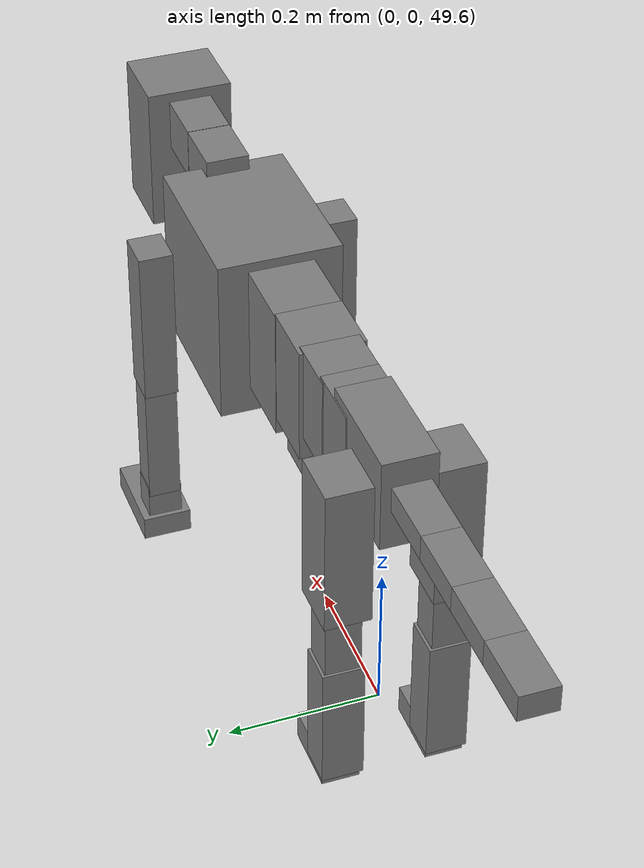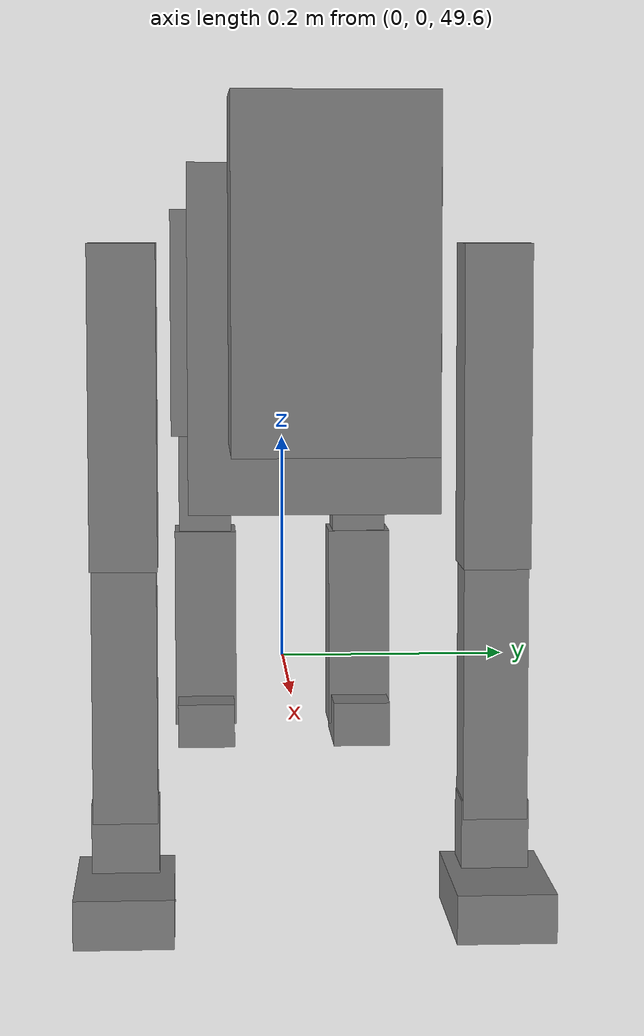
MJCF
<mujoco model="dog">

    <default>
        <joint armature="0.02" stiffness="1" damping="0.2" limited="true"/>
        <geom condim="3" friction="1 0.05 0.05" margin="0.01"/>
        <motor ctrllimited="true" ctrlrange="-1.0 1.0" forcelimited="true" gear="50"/>
    </default>

    <compiler inertiafromgeom="true" angle="radian"/>

    <option timestep="0.016" iterations="50" tolerance="1e-10" solver="Newton" jacobian="dense" cone="pyramidal"/>

    <size nconmax="20000" njmax="60000" nstack="5000000"/>
    <visual>
        <map force="0.1" zfar="30"/>
        <rgba haze="0.15 0.25 0.35 1"/>
        <quality shadowsize="2048"/>
        <global offwidth="800" offheight="800"/>
    </visual>

    <asset>
        <texture type="skybox" builtin="gradient" rgb1="0.3 0.5 0.7" rgb2="0 0 0" width="512" height="512"/>
        <texture name="texplane" type="2d" builtin="checker" rgb1=".2 .3 .4" rgb2=".1 0.15 0.2" width="512" height="512"
                 mark="cross" markrgb=".8 .8 .8"/>
        <texture name="texgeom" type="cube" builtin="flat" mark="cross" width="127" height="1278" rgb1="0.8 0.6 0.4"
                 rgb2="0.8 0.6 0.4" markrgb="1 1 1" random="0.01"/>

        <material name="matplane" reflectance="0.3" texture="texplane" texrepeat="1 1" texuniform="true"/>
        <material name="matgeom" texture="texgeom" texuniform="true" rgba="0.8 0.6 .4 1"/>
    </asset>

    <worldbody>
        <geom name="floor" pos="0 0 0" size="0 0 .25" type="plane" material="matplane" condim="3"/>

        <light directional="false" diffuse=".2 .2 .2" specular="0 0 0" pos="0 0 5" dir="0 0 -1" castshadow="false"/>
        <light mode="targetbodycom" target="torso" directional="false" diffuse=".8 .8 .8" specular="0.3 0.3 0.3"
               pos="0 0 4.0" dir="0 0 -1"/>

        <body name="root" pos="0 0 50">
            <freejoint name="root_1"/>
            <geom type="box" pos="0 0 -0.02" size="0.0774  0.0358  0.063" density="2030"/>

            <body name="spine1" pos="0.054 0 0">
                <joint name="spine1_y" axis="0 1 0" range="0 0.7" limited="true"/>
                <geom type="box" pos="0.02375 0 -0.03" size="0.04375  0.0375  0.05985" density="2030"/>

                <body name="spine2" pos="0.0612 0 0">
                    <joint name="spine2_y" axis="0 1 0" range="-0.15 0.15" limited="true"/>
                    <geom type="box" pos="0.03555  0  -0.04" size="0.04055  0.039  0.06615" density="2030"/>

                    <body name="spine3" pos="0.0730 0 0">
                        <joint name="spine3_y" axis="0 1 0" range="-0.15 0.15" limited="true"/>
                        <geom type="box" pos="0.03555  0  -0.057" size="0.04555  0.0445  0.081" density="2030"/>

                        <body name="spine4" pos="0.0780 0 0">
                            <joint name="spine4_y" axis="0 1 0" range="-0.15 0.15" limited="true"/>
                            <geom type="box" pos="0.05265  0  -0.07" size="0.05265  0.045  0.09135" density="2030"/>

                            <body name="torso" pos="0.1082 0 0">
                                <joint name="torso_y" axis="0 1 0" range="-0.15 0.15" limited="true"/>
                                <geom type="box" pos="0.11925  0  -0.085" size="0.11925  0.085  0.11745"
                                      density="2030"/>

                                <body name="neck1" pos="0.2160  0   0.0180">
                                    <joint name="neck1_y" axis="0 1 0" range="-1.2  -1" limited="true"/>
                                    <geom type="box" pos="0.0423  0  0" size="0.0423  0.03  0.036" density="2325"/>

                                    <body name="neck2" pos="0.0853  0  0">
                                        <joint name="neck2_y" axis="0 1 0" range="0.1  0" limited="true"/>
                                        <geom type="box" pos="0.0423  0  0" size="0.0423  0.03  0.036" density="2325"/>

                                        <body name="head" pos="0.0853  0  0">
                                            <joint name="head_y" axis="0 1 0" range="-0.3  -0.2" limited="true"/>
                                            <geom type="box" pos="0.0531  0  -0.055" size="0.0531  0.06  0.1044"
                                                  density="4030"/>

                                        </body>
                                    </body>
                                </body>

                                <body name="front_shoulder" pos="0.156  0   -0.0480">
                                    <joint name="front_shoulder_y" axis="0 1 0" range="-1 1.5" limited="true"/>
                                    <geom type="box" pos="0 0.13 -0.0866" size="0.0276  0.0236  0.1133" density="1158"/>
                                    <geom type="box" pos="0 -0.13 -0.0866" size="0.0276  0.0236  0.1133"
                                          density="1158"/>

                                    <body name="front_elbow" pos="0  0  -0.1732">
                                        <joint name="front_elbow_y" axis="0 1 0" range="-2 0" limited="true"/>
                                        <geom type="box" pos="0 0.13 -0.1025" size="0.0222  0.0227  0.1025"
                                              density="1081"/>
                                        <geom type="box" pos="0 -0.13 -0.1025" size="0.0222  0.0227  0.1025"
                                              density="1081"/>

                                        <body name="front_wrist" pos="0  0  -0.2050">
                                            <joint name="front_wrist_y" axis="0 1 0" range="-0.2 0" limited="true"/>
                                            <geom type="box" pos="0 0.13 -0.0251" size="0.0213  0.0237  0.0383"
                                                  density="1664"/>
                                            <geom type="box" pos="0 -0.13 -0.0251" size="0.0213  0.0237  0.0383"
                                                  density="1664"/>

                                            <body name="front_finger_end" pos="0  0  -0.0502">
                                                <joint name="front_finger_y" axis="0 1 0" range="-0.4 1"
                                                       limited="true"/>
                                                <geom type="box" pos="0.0342  0.13  -0.0020"
                                                      size="0.0628  0.0342  0.0170" density="1515"/>
                                                <geom type="box" pos="0.0342  -0.13  -0.0020"
                                                      size="0.0628  0.0342  0.0170" density="1515"/>

                                            </body>

                                        </body>
                                    </body>
                                </body>

                            </body>
                        </body>
                    </body>
                </body>
            </body>

            <body name="back_hip" pos="-0.03 0 -0.018">
                <joint name="back_hip_y" axis="0 1 0" range="-1.5 0.3" limited="true"/>
                <geom type="box" pos="0 0.07 -0.0788" size="0.0388  0.0305  0.1016" density="1154"/>
                <geom type="box" pos="0 -0.07 -0.0788" size="0.0388  0.0305  0.1016" density="1154"/>

                <body name="back_knee" pos="0  0  -0.1576">
                    <joint name="back_knee_y" axis="0 1 0" range="0 2.8" limited="true"/>
                    <geom type="box" pos="0 0.07 -0.0610" size="0.0240  0.0237  0.0765" density="1227"/>
                    <geom type="box" pos="0 -0.07 -0.0610" size="0.0240  0.0237  0.0765" density="1227"/>

                    <body name="back_ankle" pos="0  0  -0.1220">
                        <joint name="back_ankle_y" axis="0 1 0" range="-2.2 0" limited="true"/>
                        <geom type="box" pos="0 0.07 -0.0777" size="0.0276  0.0276  0.0889" density="1284"/>
                        <geom type="box" pos="0 -0.07 -0.0777" size="0.0276  0.0276  0.0889" density="1284"/>

                        <body name="back_toe_end" pos="0  0  -0.1553">
                            <joint name="back_toe_y" axis="0 1 0" range="-0.4 1" limited="true"/>
                            <geom type="box" pos="0.0253  0.07  -0.0044" size="0.0464  0.0253  0.0194" density="1515"/>
                            <geom type="box" pos="0.0253  -0.07  -0.0044" size="0.0464  0.0253  0.0194" density="1515"/>

                        </body>
                    </body>
                </body>
            </body>

            <body name="tail1" pos="-0.074 0 -0.006">
                <joint name="tail1_y" axis="0 1 0" range="-0.2 0.2" limited="true"/>
                <geom type="box" pos="-0.0536  0  0" size="0.045  0.025  0.0175" density="1587"/>

                <body name="tail2" pos="-0.09 0 0">
                    <joint name="tail2_y" axis="0 1 0" range="-0.2 0.2" limited="true"/>
                    <geom type="box" pos="-0.0536  0  0" size="0.045  0.025  0.0175" density="1587"/>

                    <body name="tail3" pos="-0.09 0 0">
                        <joint name="tail3_y" axis="0 1 0" range="-0.2 0.2" limited="true"/>
                        <geom type="box" pos="-0.0536  0  0" size="0.045  0.025  0.0175" density="1587"/>

                        <body name="tail4" pos="-0.09 0 0">
                            <joint name="tail4_y" axis="0 1 0" range="-0.2 0.2" limited="true"/>
                            <geom type="box" pos="-0.0536  0  0" size="0.045  0.025  0.0175" density="1587"/>

                        </body>
                    </body>
                </body>
            </body>
        </body>
    </worldbody>

    <actuator>
        <motor joint="spine1_y" forcerange="-150 150     "/>
        <motor joint="spine2_y" forcerange="-150 150     "/>
        <motor joint="spine3_y" forcerange="-150 150     "/>
        <motor joint="spine4_y" forcerange="-150 150     "/>
        <motor joint="torso_y" forcerange="-150 150     "/>
        <motor joint="neck1_y" forcerange="-100 100       "/>
        <motor joint="neck2_y" forcerange="-100 100       "/>
        <motor joint="head_y" forcerange="-150 150       "/>
        <motor joint="front_shoulder_y" forcerange="-109.91 147.31"/>
        <motor joint="front_elbow_y" forcerange="-160.90 104.42"/>
        <motor joint="front_wrist_y" forcerange="-83.97 105.68"/>
        <motor joint="front_finger_y" forcerange="-81.82 60.77"/>
        <motor joint="back_hip_y" forcerange="-373.63 232.60"/>
        <motor joint="back_knee_y" forcerange="-262.86 281.49"/>
        <motor joint="back_angle_y" forcerange="-234.85 106.68"/>
        <motor joint="back_toe_y" forcerange="-83.05 39.56"/>
        <motor joint="tail1_y" forcerange="-50 50     "/>
        <motor joint="tail2_y" forcerange="-50 50     "/>
        <motor joint="tail3_y" forcerange="-50 50     "/>
        <motor joint="tail4_y" forcerange="-50 50     "/>
    </actuator>
</mujoco>
